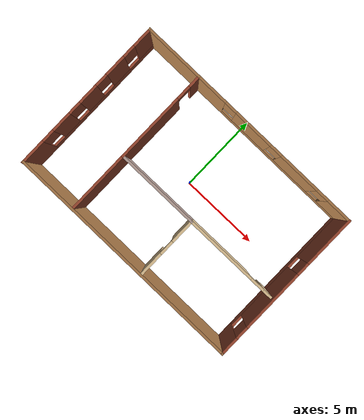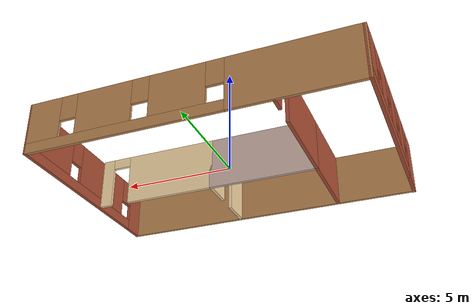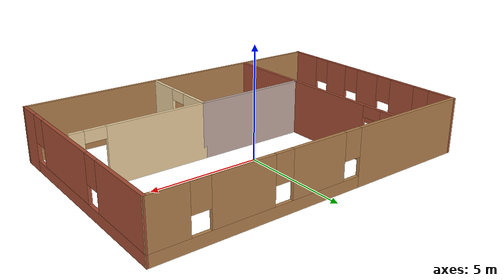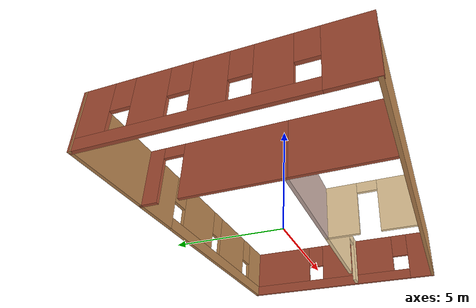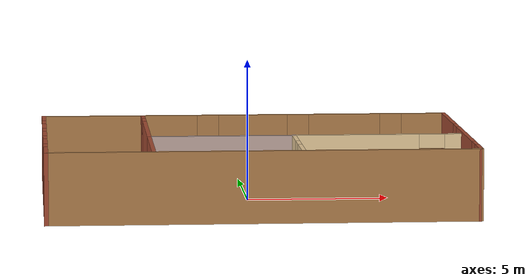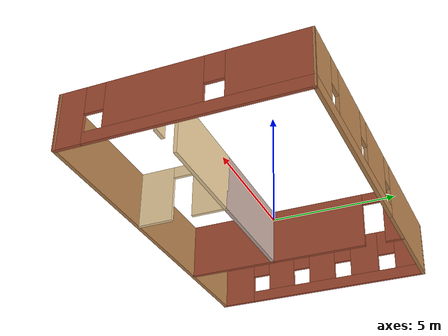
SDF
<?xml version='1.0'?>
<sdf version='1.6'>
  <model name='project_structure'>
    <pose frame=''>0.206558 -0.483558 0 0 -0 0</pose>
    <link name='Wall_15'>
      <collision name='Wall_15_Collision'>
        <geometry>
          <box>
            <size>14.9541 0.15 2.5</size>
          </box>
        </geometry>
        <pose frame=''>0 0 1.25 0 -0 0</pose>
      </collision>
      <visual name='Wall_15_Visual'>
        <pose frame=''>0 0 1.25 0 -0 0</pose>
        <geometry>
          <box>
            <size>14.9541 0.15 2.5</size>
          </box>
        </geometry>
        <material>
          <script>
            <uri>file://media/materials/scripts/gazebo.material</uri>
            <name>Gazebo/Wood</name>
          </script>
          <ambient>0.921569 0.807843 0.615686 1</ambient>
        </material>
        <meta>
          <layer>0</layer>
        </meta>
      </visual>
      <pose frame=''>0.011442 -4.91344 0 0 0 -0.003107</pose>
    </link>
    <link name='Wall_21'>
      <pose frame=''>-7.41356 0.011558 0 0 -0 1.5708</pose>
      <visual name='Wall_21_Visual_0'>
        <pose frame=''>-4.18397 0 1.25 0 -0 0</pose>
        <geometry>
          <box>
            <size>1.63206 0.15 2.5</size>
          </box>
        </geometry>
        <material>
          <script>
            <uri>file://media/materials/scripts/gazebo.material</uri>
            <name>Gazebo/Bricks</name>
          </script>
          <ambient>0.760784 0.662745 0.627451 1</ambient>
        </material>
        <meta>
          <layer>0</layer>
        </meta>
      </visual>
      <collision name='Wall_21_Collision_0'>
        <geometry>
          <box>
            <size>1.63206 0.15 2.5</size>
          </box>
        </geometry>
        <pose frame=''>-4.18397 0 1.25 0 -0 0</pose>
      </collision>
      <visual name='Wall_21_Visual_1'>
        <pose frame=''>0.816032 0 0.25 0 -0 0</pose>
        <geometry>
          <box>
            <size>8.36794 0.15 0.5</size>
          </box>
        </geometry>
        <material>
          <script>
            <uri>file://media/materials/scripts/gazebo.material</uri>
            <name>Gazebo/Bricks</name>
          </script>
          <ambient>0.760784 0.662745 0.627451 1</ambient>
        </material>
        <meta>
          <layer>0</layer>
        </meta>
      </visual>
      <collision name='Wall_21_Collision_1'>
        <geometry>
          <box>
            <size>8.36794 0.15 0.5</size>
          </box>
        </geometry>
        <pose frame=''>0.816032 0 0.25 0 -0 0</pose>
      </collision>
      <visual name='Wall_21_Visual_2'>
        <pose frame=''>-1.93374 0 1.5 0 -0 0</pose>
        <geometry>
          <box>
            <size>1.26839 0.15 2</size>
          </box>
        </geometry>
        <material>
          <script>
            <uri>file://media/materials/scripts/gazebo.material</uri>
            <name>Gazebo/Bricks</name>
          </script>
          <ambient>0.760784 0.662745 0.627451 1</ambient>
        </material>
        <meta>
          <layer>0</layer>
        </meta>
      </visual>
      <collision name='Wall_21_Collision_2'>
        <geometry>
          <box>
            <size>1.26839 0.15 2</size>
          </box>
        </geometry>
        <pose frame=''>-1.93374 0 1.5 0 -0 0</pose>
      </collision>
      <visual name='Wall_21_Visual_3'>
        <pose frame=''>0.134648 0 1.5 0 -0 0</pose>
        <geometry>
          <box>
            <size>1.26839 0.15 2</size>
          </box>
        </geometry>
        <material>
          <script>
            <uri>file://media/materials/scripts/gazebo.material</uri>
            <name>Gazebo/Bricks</name>
          </script>
          <ambient>0.760784 0.662745 0.627451 1</ambient>
        </material>
        <meta>
          <layer>0</layer>
        </meta>
      </visual>
      <collision name='Wall_21_Collision_3'>
        <geometry>
          <box>
            <size>1.26839 0.15 2</size>
          </box>
        </geometry>
        <pose frame=''>0.134648 0 1.5 0 -0 0</pose>
      </collision>
      <visual name='Wall_21_Visual_4'>
        <pose frame=''>2.23346 0 1.5 0 -0 0</pose>
        <geometry>
          <box>
            <size>1.32923 0.15 2</size>
          </box>
        </geometry>
        <material>
          <script>
            <uri>file://media/materials/scripts/gazebo.material</uri>
            <name>Gazebo/Bricks</name>
          </script>
          <ambient>0.760784 0.662745 0.627451 1</ambient>
        </material>
        <meta>
          <layer>0</layer>
        </meta>
      </visual>
      <collision name='Wall_21_Collision_4'>
        <geometry>
          <box>
            <size>1.32923 0.15 2</size>
          </box>
        </geometry>
        <pose frame=''>2.23346 0 1.5 0 -0 0</pose>
      </collision>
      <visual name='Wall_21_Visual_5'>
        <pose frame=''>4.34903 0 1.5 0 -0 0</pose>
        <geometry>
          <box>
            <size>1.30193 0.15 2</size>
          </box>
        </geometry>
        <material>
          <script>
            <uri>file://media/materials/scripts/gazebo.material</uri>
            <name>Gazebo/Bricks</name>
          </script>
          <ambient>0.760784 0.662745 0.627451 1</ambient>
        </material>
        <meta>
          <layer>0</layer>
        </meta>
      </visual>
      <collision name='Wall_21_Collision_5'>
        <geometry>
          <box>
            <size>1.30193 0.15 2</size>
          </box>
        </geometry>
        <pose frame=''>4.34903 0 1.5 0 -0 0</pose>
      </collision>
      <visual name='Wall_21_Visual_6'>
        <pose frame=''>-2.96794 0 1.9 0 -0 0</pose>
        <geometry>
          <box>
            <size>0.8 0.15 1.2</size>
          </box>
        </geometry>
        <material>
          <script>
            <uri>file://media/materials/scripts/gazebo.material</uri>
            <name>Gazebo/Bricks</name>
          </script>
          <ambient>0.760784 0.662745 0.627451 1</ambient>
        </material>
        <meta>
          <layer>0</layer>
        </meta>
      </visual>
      <collision name='Wall_21_Collision_6'>
        <geometry>
          <box>
            <size>0.8 0.15 1.2</size>
          </box>
        </geometry>
        <pose frame=''>-2.96794 0 1.9 0 -0 0</pose>
      </collision>
      <visual name='Wall_21_Visual_7'>
        <pose frame=''>-0.899547 0 1.9 0 -0 0</pose>
        <geometry>
          <box>
            <size>0.8 0.15 1.2</size>
          </box>
        </geometry>
        <material>
          <script>
            <uri>file://media/materials/scripts/gazebo.material</uri>
            <name>Gazebo/Bricks</name>
          </script>
          <ambient>0.760784 0.662745 0.627451 1</ambient>
        </material>
        <meta>
          <layer>0</layer>
        </meta>
      </visual>
      <collision name='Wall_21_Collision_7'>
        <geometry>
          <box>
            <size>0.8 0.15 1.2</size>
          </box>
        </geometry>
        <pose frame=''>-0.899547 0 1.9 0 -0 0</pose>
      </collision>
      <visual name='Wall_21_Visual_8'>
        <pose frame=''>1.16884 0 1.9 0 -0 0</pose>
        <geometry>
          <box>
            <size>0.8 0.15 1.2</size>
          </box>
        </geometry>
        <material>
          <script>
            <uri>file://media/materials/scripts/gazebo.material</uri>
            <name>Gazebo/Bricks</name>
          </script>
          <ambient>0.760784 0.662745 0.627451 1</ambient>
        </material>
        <meta>
          <layer>0</layer>
        </meta>
      </visual>
      <collision name='Wall_21_Collision_8'>
        <geometry>
          <box>
            <size>0.8 0.15 1.2</size>
          </box>
        </geometry>
        <pose frame=''>1.16884 0 1.9 0 -0 0</pose>
      </collision>
      <visual name='Wall_21_Visual_9'>
        <pose frame=''>3.29807 0 1.9 0 -0 0</pose>
        <geometry>
          <box>
            <size>0.8 0.15 1.2</size>
          </box>
        </geometry>
        <material>
          <script>
            <uri>file://media/materials/scripts/gazebo.material</uri>
            <name>Gazebo/Bricks</name>
          </script>
          <ambient>0.760784 0.662745 0.627451 1</ambient>
        </material>
        <meta>
          <layer>0</layer>
        </meta>
      </visual>
      <collision name='Wall_21_Collision_9'>
        <geometry>
          <box>
            <size>0.8 0.15 1.2</size>
          </box>
        </geometry>
        <pose frame=''>3.29807 0 1.9 0 -0 0</pose>
      </collision>
    </link>
    <link name='Wall_23'>
      <pose frame=''>7.41344 -0.011442 0 0 -0 1.5708</pose>
      <visual name='Wall_23_Visual_0'>
        <pose frame=''>-4.4006 0 1.25 0 -0 0</pose>
        <geometry>
          <box>
            <size>1.1988 0.15 2.5</size>
          </box>
        </geometry>
        <material>
          <script>
            <uri>file://media/materials/scripts/gazebo.material</uri>
            <name>Gazebo/Bricks</name>
          </script>
          <ambient>0.921569 0.807843 0.615686 1</ambient>
        </material>
        <meta>
          <layer>0</layer>
        </meta>
      </visual>
      <collision name='Wall_23_Collision_0'>
        <geometry>
          <box>
            <size>1.1988 0.15 2.5</size>
          </box>
        </geometry>
        <pose frame=''>-4.4006 0 1.25 0 -0 0</pose>
      </collision>
      <visual name='Wall_23_Visual_1'>
        <pose frame=''>0.5994 0 0.25 0 -0 0</pose>
        <geometry>
          <box>
            <size>8.8012 0.15 0.5</size>
          </box>
        </geometry>
        <material>
          <script>
            <uri>file://media/materials/scripts/gazebo.material</uri>
            <name>Gazebo/Bricks</name>
          </script>
          <ambient>0.921569 0.807843 0.615686 1</ambient>
        </material>
        <meta>
          <layer>0</layer>
        </meta>
      </visual>
      <collision name='Wall_23_Collision_1'>
        <geometry>
          <box>
            <size>8.8012 0.15 0.5</size>
          </box>
        </geometry>
        <pose frame=''>0.5994 0 0.25 0 -0 0</pose>
      </collision>
      <visual name='Wall_23_Visual_2'>
        <pose frame=''>-1.02863 0 1.5 0 -0 0</pose>
        <geometry>
          <box>
            <size>3.94513 0.15 2</size>
          </box>
        </geometry>
        <material>
          <script>
            <uri>file://media/materials/scripts/gazebo.material</uri>
            <name>Gazebo/Bricks</name>
          </script>
          <ambient>0.921569 0.807843 0.615686 1</ambient>
        </material>
        <meta>
          <layer>0</layer>
        </meta>
      </visual>
      <collision name='Wall_23_Collision_2'>
        <geometry>
          <box>
            <size>3.94513 0.15 2</size>
          </box>
        </geometry>
        <pose frame=''>-1.02863 0 1.5 0 -0 0</pose>
      </collision>
      <visual name='Wall_23_Visual_3'>
        <pose frame=''>3.37196 0 1.5 0 -0 0</pose>
        <geometry>
          <box>
            <size>3.25607 0.15 2</size>
          </box>
        </geometry>
        <material>
          <script>
            <uri>file://media/materials/scripts/gazebo.material</uri>
            <name>Gazebo/Bricks</name>
          </script>
          <ambient>0.921569 0.807843 0.615686 1</ambient>
        </material>
        <meta>
          <layer>0</layer>
        </meta>
      </visual>
      <collision name='Wall_23_Collision_3'>
        <geometry>
          <box>
            <size>3.25607 0.15 2</size>
          </box>
        </geometry>
        <pose frame=''>3.37196 0 1.5 0 -0 0</pose>
      </collision>
      <visual name='Wall_23_Visual_4'>
        <pose frame=''>-3.4012 0 1.9 0 -0 0</pose>
        <geometry>
          <box>
            <size>0.8 0.15 1.2</size>
          </box>
        </geometry>
        <material>
          <script>
            <uri>file://media/materials/scripts/gazebo.material</uri>
            <name>Gazebo/Bricks</name>
          </script>
          <ambient>0.921569 0.807843 0.615686 1</ambient>
        </material>
        <meta>
          <layer>0</layer>
        </meta>
      </visual>
      <collision name='Wall_23_Collision_4'>
        <geometry>
          <box>
            <size>0.8 0.15 1.2</size>
          </box>
        </geometry>
        <pose frame=''>-3.4012 0 1.9 0 -0 0</pose>
      </collision>
      <visual name='Wall_23_Visual_5'>
        <pose frame=''>1.34393 0 1.9 0 -0 0</pose>
        <geometry>
          <box>
            <size>0.8 0.15 1.2</size>
          </box>
        </geometry>
        <material>
          <script>
            <uri>file://media/materials/scripts/gazebo.material</uri>
            <name>Gazebo/Bricks</name>
          </script>
          <ambient>0.921569 0.807843 0.615686 1</ambient>
        </material>
        <meta>
          <layer>0</layer>
        </meta>
      </visual>
      <collision name='Wall_23_Collision_5'>
        <geometry>
          <box>
            <size>0.8 0.15 1.2</size>
          </box>
        </geometry>
        <pose frame=''>1.34393 0 1.9 0 -0 0</pose>
      </collision>
    </link>
    <link name='Wall_25'>
      <pose frame=''>-5.8e-05 4.92506 0 0 0 -0.001551</pose>
      <visual name='Wall_25_Visual_0'>
        <pose frame=''>-4.62864 0 1.25 0 -0 0</pose>
        <geometry>
          <box>
            <size>5.71975 0.15 2.5</size>
          </box>
        </geometry>
        <material>
          <script>
            <uri>file://media/materials/scripts/gazebo.material</uri>
            <name>Gazebo/Wood</name>
          </script>
          <ambient>0.760784 0.662745 0.627451 1</ambient>
        </material>
        <meta>
          <layer>0</layer>
        </meta>
      </visual>
      <collision name='Wall_25_Collision_0'>
        <geometry>
          <box>
            <size>5.71975 0.15 2.5</size>
          </box>
        </geometry>
        <pose frame=''>-4.62864 0 1.25 0 -0 0</pose>
      </collision>
      <visual name='Wall_25_Visual_1'>
        <pose frame=''>2.85987 0 0.25 0 -0 0</pose>
        <geometry>
          <box>
            <size>9.25727 0.15 0.5</size>
          </box>
        </geometry>
        <material>
          <script>
            <uri>file://media/materials/scripts/gazebo.material</uri>
            <name>Gazebo/Wood</name>
          </script>
          <ambient>0.760784 0.662745 0.627451 1</ambient>
        </material>
        <meta>
          <layer>0</layer>
        </meta>
      </visual>
      <collision name='Wall_25_Collision_1'>
        <geometry>
          <box>
            <size>9.25727 0.15 0.5</size>
          </box>
        </geometry>
        <pose frame=''>2.85987 0 0.25 0 -0 0</pose>
      </collision>
      <visual name='Wall_25_Visual_2'>
        <pose frame=''>0.300724 0 1.5 0 -0 0</pose>
        <geometry>
          <box>
            <size>2.53897 0.15 2</size>
          </box>
        </geometry>
        <material>
          <script>
            <uri>file://media/materials/scripts/gazebo.material</uri>
            <name>Gazebo/Wood</name>
          </script>
          <ambient>0.760784 0.662745 0.627451 1</ambient>
        </material>
        <meta>
          <layer>0</layer>
        </meta>
      </visual>
      <collision name='Wall_25_Collision_2'>
        <geometry>
          <box>
            <size>2.53897 0.15 2</size>
          </box>
        </geometry>
        <pose frame=''>0.300724 0 1.5 0 -0 0</pose>
      </collision>
      <visual name='Wall_25_Visual_3'>
        <pose frame=''>3.69995 0 1.5 0 -0 0</pose>
        <geometry>
          <box>
            <size>2.65947 0.15 2</size>
          </box>
        </geometry>
        <material>
          <script>
            <uri>file://media/materials/scripts/gazebo.material</uri>
            <name>Gazebo/Wood</name>
          </script>
          <ambient>0.760784 0.662745 0.627451 1</ambient>
        </material>
        <meta>
          <layer>0</layer>
        </meta>
      </visual>
      <collision name='Wall_25_Collision_3'>
        <geometry>
          <box>
            <size>2.65947 0.15 2</size>
          </box>
        </geometry>
        <pose frame=''>3.69995 0 1.5 0 -0 0</pose>
      </collision>
      <visual name='Wall_25_Visual_4'>
        <pose frame=''>6.65909 0 1.5 0 -0 0</pose>
        <geometry>
          <box>
            <size>1.65883 0.15 2</size>
          </box>
        </geometry>
        <material>
          <script>
            <uri>file://media/materials/scripts/gazebo.material</uri>
            <name>Gazebo/Wood</name>
          </script>
          <ambient>0.760784 0.662745 0.627451 1</ambient>
        </material>
        <meta>
          <layer>0</layer>
        </meta>
      </visual>
      <collision name='Wall_25_Collision_4'>
        <geometry>
          <box>
            <size>1.65883 0.15 2</size>
          </box>
        </geometry>
        <pose frame=''>6.65909 0 1.5 0 -0 0</pose>
      </collision>
      <visual name='Wall_25_Visual_5'>
        <pose frame=''>-1.36876 0 1.9 0 -0 0</pose>
        <geometry>
          <box>
            <size>0.8 0.15 1.2</size>
          </box>
        </geometry>
        <material>
          <script>
            <uri>file://media/materials/scripts/gazebo.material</uri>
            <name>Gazebo/Wood</name>
          </script>
          <ambient>0.760784 0.662745 0.627451 1</ambient>
        </material>
        <meta>
          <layer>0</layer>
        </meta>
      </visual>
      <collision name='Wall_25_Collision_5'>
        <geometry>
          <box>
            <size>0.8 0.15 1.2</size>
          </box>
        </geometry>
        <pose frame=''>-1.36876 0 1.9 0 -0 0</pose>
      </collision>
      <visual name='Wall_25_Visual_6'>
        <pose frame=''>1.97021 0 1.9 0 -0 0</pose>
        <geometry>
          <box>
            <size>0.8 0.15 1.2</size>
          </box>
        </geometry>
        <material>
          <script>
            <uri>file://media/materials/scripts/gazebo.material</uri>
            <name>Gazebo/Wood</name>
          </script>
          <ambient>0.760784 0.662745 0.627451 1</ambient>
        </material>
        <meta>
          <layer>0</layer>
        </meta>
      </visual>
      <collision name='Wall_25_Collision_6'>
        <geometry>
          <box>
            <size>0.8 0.15 1.2</size>
          </box>
        </geometry>
        <pose frame=''>1.97021 0 1.9 0 -0 0</pose>
      </collision>
      <visual name='Wall_25_Visual_7'>
        <pose frame=''>5.42968 0 1.9 0 -0 0</pose>
        <geometry>
          <box>
            <size>0.8 0.15 1.2</size>
          </box>
        </geometry>
        <material>
          <script>
            <uri>file://media/materials/scripts/gazebo.material</uri>
            <name>Gazebo/Wood</name>
          </script>
          <ambient>0.760784 0.662745 0.627451 1</ambient>
        </material>
        <meta>
          <layer>0</layer>
        </meta>
      </visual>
      <collision name='Wall_25_Collision_7'>
        <geometry>
          <box>
            <size>0.8 0.15 1.2</size>
          </box>
        </geometry>
        <pose frame=''>5.42968 0 1.9 0 -0 0</pose>
      </collision>
    </link>
    <link name='Wall_27'>
      <pose frame=''>-3.76645 1.95597 0 0 0 -1.5708</pose>
      <visual name='Wall_27_Visual_0'>
        <pose frame=''>-2.61475 0 1.25 0 -0 0</pose>
        <geometry>
          <box>
            <size>0.770497 0.15 2.5</size>
          </box>
        </geometry>
        <material>
          <script>
            <uri>file://media/materials/scripts/gazebo.material</uri>
            <name>Gazebo/Bricks</name>
          </script>
          <ambient>0.760784 0.662745 0.627451 1</ambient>
        </material>
        <meta>
          <layer>0</layer>
        </meta>
      </visual>
      <collision name='Wall_27_Collision_0'>
        <geometry>
          <box>
            <size>0.770497 0.15 2.5</size>
          </box>
        </geometry>
        <pose frame=''>-2.61475 0 1.25 0 -0 0</pose>
      </collision>
      <visual name='Wall_27_Visual_1'>
        <pose frame=''>0.835249 0 1.25 0 -0 0</pose>
        <geometry>
          <box>
            <size>4.3295 0.15 2.5</size>
          </box>
        </geometry>
        <material>
          <script>
            <uri>file://media/materials/scripts/gazebo.material</uri>
            <name>Gazebo/Bricks</name>
          </script>
          <ambient>0.760784 0.662745 0.627451 1</ambient>
        </material>
        <meta>
          <layer>0</layer>
        </meta>
      </visual>
      <collision name='Wall_27_Collision_1'>
        <geometry>
          <box>
            <size>4.3295 0.15 2.5</size>
          </box>
        </geometry>
        <pose frame=''>0.835249 0 1.25 0 -0 0</pose>
      </collision>
      <visual name='Wall_27_Visual_2'>
        <pose frame=''>-1.7795 0 2.25 0 -0 0</pose>
        <geometry>
          <box>
            <size>0.9 0.15 0.5</size>
          </box>
        </geometry>
        <material>
          <script>
            <uri>file://media/materials/scripts/gazebo.material</uri>
            <name>Gazebo/Bricks</name>
          </script>
          <ambient>0.760784 0.662745 0.627451 1</ambient>
        </material>
        <meta>
          <layer>0</layer>
        </meta>
      </visual>
      <collision name='Wall_27_Collision_2'>
        <geometry>
          <box>
            <size>0.9 0.15 0.5</size>
          </box>
        </geometry>
        <pose frame=''>-1.7795 0 2.25 0 -0 0</pose>
      </collision>
    </link>
    <link name='Wall_28'>
      <collision name='Wall_28_Collision'>
        <geometry>
          <box>
            <size>5.25 0.15 2.5</size>
          </box>
        </geometry>
        <pose frame=''>0 0 1.25 0 -0 0</pose>
      </collision>
      <visual name='Wall_28_Visual'>
        <pose frame=''>0 0 1.25 0 -0 0</pose>
        <geometry>
          <box>
            <size>5.25 0.15 2.5</size>
          </box>
        </geometry>
        <material>
          <script>
            <uri>file://media/materials/scripts/gazebo.material</uri>
            <name>Gazebo/Grey</name>
          </script>
          <ambient>0.760784 0.662745 0.627451 1</ambient>
        </material>
        <meta>
          <layer>0</layer>
        </meta>
      </visual>
      <pose frame=''>-1.21644 -0.969031 0 0 -0 0</pose>
    </link>
    <link name='Wall_29'>
      <pose frame=''>1.33356 -2.89403 0 0 0 -1.5708</pose>
      <visual name='Wall_29_Visual_0'>
        <pose frame=''>-1.22424 0 1.25 0 -0 0</pose>
        <geometry>
          <box>
            <size>1.55151 0.15 2.5</size>
          </box>
        </geometry>
        <material>
          <script>
            <uri>file://media/materials/scripts/gazebo.material</uri>
            <name>Gazebo/Grey</name>
          </script>
          <ambient>0.921569 0.807843 0.615686 1</ambient>
        </material>
        <meta>
          <layer>0</layer>
        </meta>
      </visual>
      <collision name='Wall_29_Collision_0'>
        <geometry>
          <box>
            <size>1.55151 0.15 2.5</size>
          </box>
        </geometry>
        <pose frame=''>-1.22424 0 1.25 0 -0 0</pose>
      </collision>
      <visual name='Wall_29_Visual_1'>
        <pose frame=''>1.22576 0 1.25 0 -0 0</pose>
        <geometry>
          <box>
            <size>1.54849 0.15 2.5</size>
          </box>
        </geometry>
        <material>
          <script>
            <uri>file://media/materials/scripts/gazebo.material</uri>
            <name>Gazebo/Grey</name>
          </script>
          <ambient>0.921569 0.807843 0.615686 1</ambient>
        </material>
        <meta>
          <layer>0</layer>
        </meta>
      </visual>
      <collision name='Wall_29_Collision_1'>
        <geometry>
          <box>
            <size>1.54849 0.15 2.5</size>
          </box>
        </geometry>
        <pose frame=''>1.22576 0 1.25 0 -0 0</pose>
      </collision>
      <visual name='Wall_29_Visual_2'>
        <pose frame=''>0.001512 0 2.25 0 -0 0</pose>
        <geometry>
          <box>
            <size>0.9 0.15 0.5</size>
          </box>
        </geometry>
        <material>
          <script>
            <uri>file://media/materials/scripts/gazebo.material</uri>
            <name>Gazebo/Grey</name>
          </script>
          <ambient>0.921569 0.807843 0.615686 1</ambient>
        </material>
        <meta>
          <layer>0</layer>
        </meta>
      </visual>
      <collision name='Wall_29_Collision_2'>
        <geometry>
          <box>
            <size>0.9 0.15 0.5</size>
          </box>
        </geometry>
        <pose frame=''>0.001512 0 2.25 0 -0 0</pose>
      </collision>
    </link>
    <link name='Wall_31'>
      <pose frame=''>4.25855 -0.969031 0 0 -0 0</pose>
      <visual name='Wall_31_Visual_0'>
        <pose frame=''>-0.749855 0 1.25 0 -0 0</pose>
        <geometry>
          <box>
            <size>4.50029 0.15 2.5</size>
          </box>
        </geometry>
        <material>
          <script>
            <uri>file://media/materials/scripts/gazebo.material</uri>
            <name>Gazebo/Grey</name>
          </script>
          <ambient>0.921569 0.807843 0.615686 1</ambient>
        </material>
        <meta>
          <layer>0</layer>
        </meta>
      </visual>
      <collision name='Wall_31_Collision_0'>
        <geometry>
          <box>
            <size>4.50029 0.15 2.5</size>
          </box>
        </geometry>
        <pose frame=''>-0.749855 0 1.25 0 -0 0</pose>
      </collision>
      <visual name='Wall_31_Visual_1'>
        <pose frame=''>2.70015 0 1.25 0 -0 0</pose>
        <geometry>
          <box>
            <size>0.599711 0.15 2.5</size>
          </box>
        </geometry>
        <material>
          <script>
            <uri>file://media/materials/scripts/gazebo.material</uri>
            <name>Gazebo/Grey</name>
          </script>
          <ambient>0.921569 0.807843 0.615686 1</ambient>
        </material>
        <meta>
          <layer>0</layer>
        </meta>
      </visual>
      <collision name='Wall_31_Collision_1'>
        <geometry>
          <box>
            <size>0.599711 0.15 2.5</size>
          </box>
        </geometry>
        <pose frame=''>2.70015 0 1.25 0 -0 0</pose>
      </collision>
      <visual name='Wall_31_Visual_2'>
        <pose frame=''>1.95029 0 2.25 0 -0 0</pose>
        <geometry>
          <box>
            <size>0.9 0.15 0.5</size>
          </box>
        </geometry>
        <material>
          <script>
            <uri>file://media/materials/scripts/gazebo.material</uri>
            <name>Gazebo/Grey</name>
          </script>
          <ambient>0.921569 0.807843 0.615686 1</ambient>
        </material>
        <meta>
          <layer>0</layer>
        </meta>
      </visual>
      <collision name='Wall_31_Collision_2'>
        <geometry>
          <box>
            <size>0.9 0.15 0.5</size>
          </box>
        </geometry>
        <pose frame=''>1.95029 0 2.25 0 -0 0</pose>
      </collision>
    </link>
    <link name='Wall_33'>
      <collision name='Wall_33_Collision'>
        <geometry>
          <box>
            <size>4 0.15 2.5</size>
          </box>
        </geometry>
        <pose frame=''>0 0 1.25 0 -0 0</pose>
      </collision>
      <visual name='Wall_33_Visual'>
        <pose frame=''>0 0 1.25 0 -0 0</pose>
        <geometry>
          <box>
            <size>4 0.15 2.5</size>
          </box>
        </geometry>
        <material>
          <script>
            <uri>file://media/materials/scripts/gazebo.material</uri>
            <name>Gazebo/Bricks</name>
          </script>
          <ambient>0.760784 0.662745 0.627451 1</ambient>
        </material>
        <meta>
          <layer>0</layer>
        </meta>
      </visual>
      <pose frame=''>-3.76645 -2.89403 0 0 0 -1.5708</pose>
    </link>
    <static>1</static>
  </model>
</sdf>
